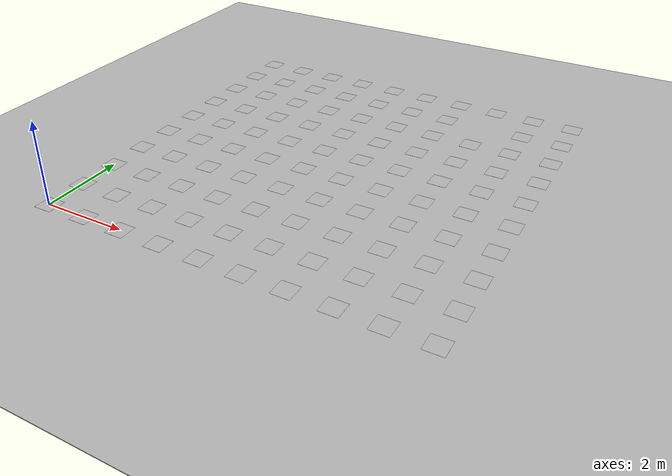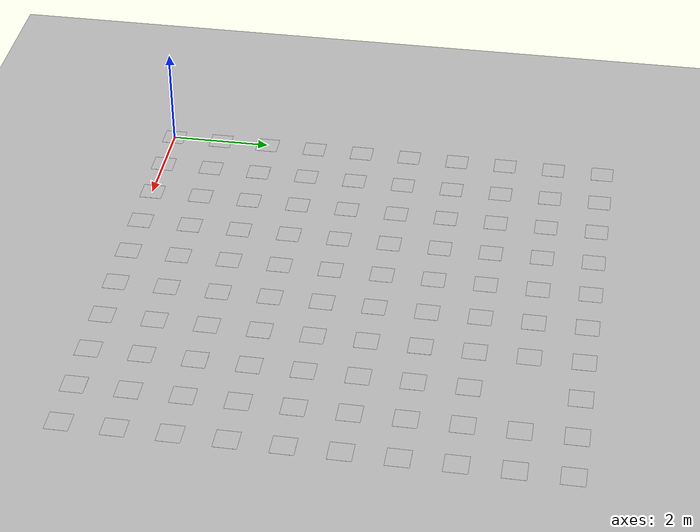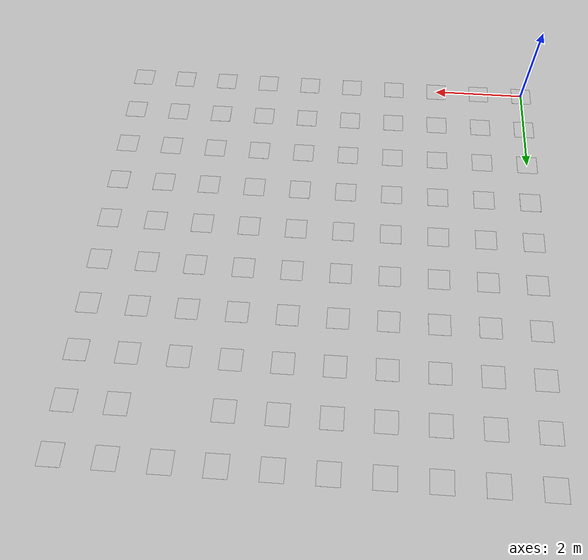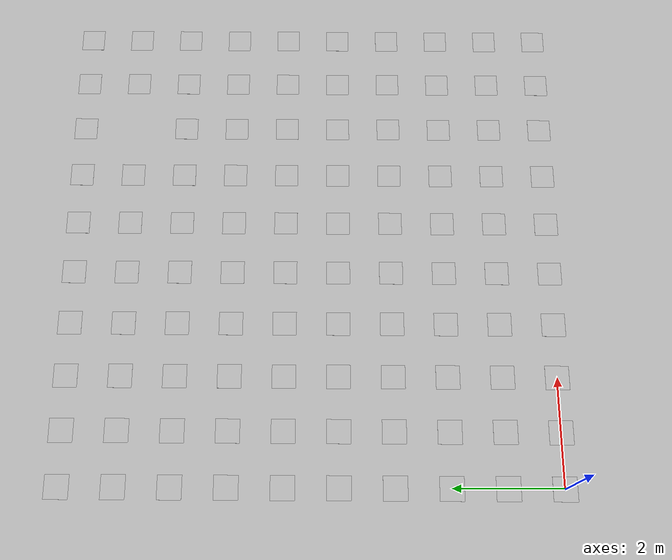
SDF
<?xml version="1.0" ?>
<sdf version="1.5">
  <world name="default">
    <!-- A global light source -->
    <include>
      <uri>model://sun</uri>
    </include>
    <include>
      <uri>model://parquet_plane</uri>
      <pose>0 0 -0.01 0 0 0</pose>
    </include>

    <include>
      <uri>model://aruco_cmit_txt</uri>
    </include>

    <scene>
      <ambient>0.1 0.1 0.1 1</ambient>
      <background>0.1 0.1 0.1 1</background>
      <shadows>false</shadows>
      <grid>false</grid>
      <origin_visual>false</origin_visual>
    </scene>

    <physics name='default_physics' default='0' type='ode'>
      <gravity>0 0 -9.8066</gravity>
      <ode>
        <solver>
          <type>quick</type>
          <iters>10</iters>
          <sor>1.3</sor>
          <use_dynamic_moi_rescaling>0</use_dynamic_moi_rescaling>
        </solver>
        <constraints>
          <cfm>0</cfm>
          <erp>0.2</erp>
          <contact_max_correcting_vel>100</contact_max_correcting_vel>
          <contact_surface_layer>0.001</contact_surface_layer>
        </constraints>
      </ode>
      <max_step_size>0.004</max_step_size>
      <real_time_factor>1</real_time_factor>
      <real_time_update_rate>250</real_time_update_rate>
      <magnetic_field>6.0e-6 2.3e-5 -4.2e-5</magnetic_field>
    </physics>
  </world>
</sdf>

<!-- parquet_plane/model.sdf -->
<sdf version="1.5">
  <model name="parquet_plane">
    <static>true</static>
    <link name="link">
      <collision name="collision">
        <geometry>
          <box>
            <size>200 200 .02</size>
          </box>
        </geometry>
      </collision>
      <visual name="visual">
        <cast_shadows>false</cast_shadows>
        <geometry>
          <box>
            <size>200 200 .02</size>
          </box>
        </geometry>
        <material>
          <script>
            <uri>model://parquet_plane/materials/scripts</uri>
            <uri>model://parquet_plane/materials/textures</uri>
            <name>parquet</name>
          </script>
        </material>
      </visual>
    </link>
  </model>
</sdf>

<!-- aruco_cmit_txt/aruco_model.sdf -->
<sdf version="1.5">
    <model name="aruco_2_99">
        <static>true</static>
        <link name="aruco_2_99_link">

<visual name="visual_marker_2_0">
    <pose>0.0 9.0 0.0 0.0 0.0 1.57079632679</pose>
    <cast_shadows>false</cast_shadows>
    <geometry>
        <box>
            <size>0.44 0.44 1e-3</size>
        </box>
    </geometry>
    <material>
        <script>
            <uri>model://aruco_cmit_txt/materials/scripts</uri>
            <uri>model://aruco_cmit_txt/materials/textures</uri>
            <name>aruco/marker_2_0</name>
        </script>
    </material>
</visual>

<visual name="visual_marker_2_1">
    <pose>1.0 9.0 0.0 0.0 0.0 1.57079632679</pose>
    <cast_shadows>false</cast_shadows>
    <geometry>
        <box>
            <size>0.44 0.44 1e-3</size>
        </box>
    </geometry>
    <material>
        <script>
            <uri>model://aruco_cmit_txt/materials/scripts</uri>
            <uri>model://aruco_cmit_txt/materials/textures</uri>
            <name>aruco/marker_2_1</name>
        </script>
    </material>
</visual>

<visual name="visual_marker_2_2">
    <pose>2.0 9.0 0.0 0.0 0.0 1.57079632679</pose>
    <cast_shadows>false</cast_shadows>
    <geometry>
        <box>
            <size>0.44 0.44 1e-3</size>
        </box>
    </geometry>
    <material>
        <script>
            <uri>model://aruco_cmit_txt/materials/scripts</uri>
            <uri>model://aruco_cmit_txt/materials/textures</uri>
            <name>aruco/marker_2_2</name>
        </script>
    </material>
</visual>

<visual name="visual_marker_2_3">
    <pose>3.0 9.0 0.0 0.0 0.0 1.57079632679</pose>
    <cast_shadows>false</cast_shadows>
    <geometry>
        <box>
            <size>0.44 0.44 1e-3</size>
        </box>
    </geometry>
    <material>
        <script>
            <uri>model://aruco_cmit_txt/materials/scripts</uri>
            <uri>model://aruco_cmit_txt/materials/textures</uri>
            <name>aruco/marker_2_3</name>
        </script>
    </material>
</visual>

<visual name="visual_marker_2_4">
    <pose>4.0 9.0 0.0 0.0 0.0 1.57079632679</pose>
    <cast_shadows>false</cast_shadows>
    <geometry>
        <box>
            <size>0.44 0.44 1e-3</size>
        </box>
    </geometry>
    <material>
        <script>
            <uri>model://aruco_cmit_txt/materials/scripts</uri>
            <uri>model://aruco_cmit_txt/materials/textures</uri>
            <name>aruco/marker_2_4</name>
        </script>
    </material>
</visual>

<visual name="visual_marker_2_5">
    <pose>5.0 9.0 0.0 0.0 0.0 1.57079632679</pose>
    <cast_shadows>false</cast_shadows>
    <geometry>
        <box>
            <size>0.44 0.44 1e-3</size>
        </box>
    </geometry>
    <material>
        <script>
            <uri>model://aruco_cmit_txt/materials/scripts</uri>
            <uri>model://aruco_cmit_txt/materials/textures</uri>
            <name>aruco/marker_2_5</name>
        </script>
    </material>
</visual>

<visual name="visual_marker_2_6">
    <pose>6.0 9.0 0.0 0.0 0.0 1.57079632679</pose>
    <cast_shadows>false</cast_shadows>
    <geometry>
        <box>
            <size>0.44 0.44 1e-3</size>
        </box>
    </geometry>
    <material>
        <script>
            <uri>model://aruco_cmit_txt/materials/scripts</uri>
            <uri>model://aruco_cmit_txt/materials/textures</uri>
            <name>aruco/marker_2_6</name>
        </script>
    </material>
</visual>

<visual name="visual_marker_2_7">
    <pose>7.0 9.0 0.0 0.0 0.0 1.57079632679</pose>
    <cast_shadows>false</cast_shadows>
    <geometry>
        <box>
            <size>0.44 0.44 1e-3</size>
        </box>
    </geometry>
    <material>
        <script>
            <uri>model://aruco_cmit_txt/materials/scripts</uri>
            <uri>model://aruco_cmit_txt/materials/textures</uri>
            <name>aruco/marker_2_7</name>
        </script>
    </material>
</visual>

<visual name="visual_marker_2_8">
    <pose>8.0 9.0 0.0 0.0 0.0 1.57079632679</pose>
    <cast_shadows>false</cast_shadows>
    <geometry>
        <box>
            <size>0.44 0.44 1e-3</size>
        </box>
    </geometry>
    <material>
        <script>
            <uri>model://aruco_cmit_txt/materials/scripts</uri>
            <uri>model://aruco_cmit_txt/materials/textures</uri>
            <name>aruco/marker_2_8</name>
        </script>
    </material>
</visual>

<visual name="visual_marker_2_9">
    <pose>9.0 9.0 0.0 0.0 0.0 1.57079632679</pose>
    <cast_shadows>false</cast_shadows>
    <geometry>
        <box>
            <size>0.44 0.44 1e-3</size>
        </box>
    </geometry>
    <material>
        <script>
            <uri>model://aruco_cmit_txt/materials/scripts</uri>
            <uri>model://aruco_cmit_txt/materials/textures</uri>
            <name>aruco/marker_2_9</name>
        </script>
    </material>
</visual>

<visual name="visual_marker_2_10">
    <pose>0.0 8.0 0.0 0.0 0.0 1.57079632679</pose>
    <cast_shadows>false</cast_shadows>
    <geometry>
        <box>
            <size>0.44 0.44 1e-3</size>
        </box>
    </geometry>
    <material>
        <script>
            <uri>model://aruco_cmit_txt/materials/scripts</uri>
            <uri>model://aruco_cmit_txt/materials/textures</uri>
            <name>aruco/marker_2_10</name>
        </script>
    </material>
</visual>

<visual name="visual_marker_2_11">
    <pose>1.0 8.0 0.0 0.0 0.0 1.57079632679</pose>
    <cast_shadows>false</cast_shadows>
    <geometry>
        <box>
            <size>0.44 0.44 1e-3</size>
        </box>
    </geometry>
    <material>
        <script>
            <uri>model://aruco_cmit_txt/materials/scripts</uri>
            <uri>model://aruco_cmit_txt/materials/textures</uri>
            <name>aruco/marker_2_11</name>
        </script>
    </material>
</visual>

<visual name="visual_marker_2_12">
    <pose>2.0 8.0 0.0 0.0 0.0 1.57079632679</pose>
    <cast_shadows>false</cast_shadows>
    <geometry>
        <box>
            <size>0.44 0.44 1e-3</size>
        </box>
    </geometry>
    <material>
        <script>
            <uri>model://aruco_cmit_txt/materials/scripts</uri>
            <uri>model://aruco_cmit_txt/materials/textures</uri>
            <name>aruco/marker_2_12</name>
        </script>
    </material>
</visual>

<visual name="visual_marker_2_13">
    <pose>3.0 8.0 0.0 0.0 0.0 1.57079632679</pose>
    <cast_shadows>false</cast_shadows>
    <geometry>
        <box>
            <size>0.44 0.44 1e-3</size>
        </box>
    </geometry>
    <material>
        <script>
            <uri>model://aruco_cmit_txt/materials/scripts</uri>
            <uri>model://aruco_cmit_txt/materials/textures</uri>
            <name>aruco/marker_2_13</name>
        </script>
    </material>
</visual>

<visual name="visual_marker_2_14">
    <pose>4.0 8.0 0.0 0.0 0.0 1.57079632679</pose>
    <cast_shadows>false</cast_shadows>
    <geometry>
        <box>
            <size>0.44 0.44 1e-3</size>
        </box>
    </geometry>
    <material>
        <script>
            <uri>model://aruco_cmit_txt/materials/scripts</uri>
            <uri>model://aruco_cmit_txt/materials/textures</uri>
            <name>aruco/marker_2_14</name>
        </script>
    </material>
</visual>

<visual name="visual_marker_2_15">
    <pose>5.0 8.0 0.0 0.0 0.0 1.57079632679</pose>
    <cast_shadows>false</cast_shadows>
    <geometry>
        <box>
            <size>0.44 0.44 1e-3</size>
        </box>
    </geometry>
    <material>
        <script>
            <uri>model://aruco_cmit_txt/materials/scripts</uri>
            <uri>model://aruco_cmit_txt/materials/textures</uri>
            <name>aruco/marker_2_15</name>
        </script>
    </material>
</visual>

<visual name="visual_marker_2_16">
    <pose>6.0 8.0 0.0 0.0 0.0 1.57079632679</pose>
    <cast_shadows>false</cast_shadows>
    <geometry>
        <box>
            <size>0.44 0.44 1e-3</size>
        </box>
    </geometry>
    <material>
        <script>
            <uri>model://aruco_cmit_txt/materials/scripts</uri>
            <uri>model://aruco_cmit_txt/materials/textures</uri>
            <name>aruco/marker_2_16</name>
        </script>
    </material>
</visual>

<visual name="visual_marker_2_18">
    <pose>8.0 8.0 0.0 0.0 0.0 1.57079632679</pose>
    <cast_shadows>false</cast_shadows>
    <geometry>
        <box>
            <size>0.44 0.44 1e-3</size>
        </box>
    </geometry>
    <material>
        <script>
            <uri>model://aruco_cmit_txt/materials/scripts</uri>
            <uri>model://aruco_cmit_txt/materials/textures</uri>
            <name>aruco/marker_2_18</name>
        </script>
    </material>
</visual>

<visual name="visual_marker_2_19">
    <pose>9.0 8.0 0.0 0.0 0.0 1.57079632679</pose>
    <cast_shadows>false</cast_shadows>
    <geometry>
        <box>
            <size>0.44 0.44 1e-3</size>
        </box>
    </geometry>
    <material>
        <script>
            <uri>model://aruco_cmit_txt/materials/scripts</uri>
            <uri>model://aruco_cmit_txt/materials/textures</uri>
            <name>aruco/marker_2_19</name>
        </script>
    </material>
</visual>

<visual name="visual_marker_2_20">
    <pose>0.0 7.0 0.0 0.0 0.0 1.57079632679</pose>
    <cast_shadows>false</cast_shadows>
    <geometry>
        <box>
            <size>0.44 0.44 1e-3</size>
        </box>
    </geometry>
    <material>
        <script>
            <uri>model://aruco_cmit_txt/materials/scripts</uri>
            <uri>model://aruco_cmit_txt/materials/textures</uri>
            <name>aruco/marker_2_20</name>
        </script>
    </material>
</visual>

<visual name="visual_marker_2_21">
    <pose>1.0 7.0 0.0 0.0 0.0 1.57079632679</pose>
    <cast_shadows>false</cast_shadows>
    <geometry>
        <box>
            <size>0.44 0.44 1e-3</size>
        </box>
    </geometry>
    <material>
        <script>
            <uri>model://aruco_cmit_txt/materials/scripts</uri>
            <uri>model://aruco_cmit_txt/materials/textures</uri>
            <name>aruco/marker_2_21</name>
        </script>
    </material>
</visual>

<visual name="visual_marker_2_22">
    <pose>2.0 7.0 0.0 0.0 0.0 1.57079632679</pose>
    <cast_shadows>false</cast_shadows>
    <geometry>
        <box>
            <size>0.44 0.44 1e-3</size>
        </box>
    </geometry>
    <material>
        <script>
            <uri>model://aruco_cmit_txt/materials/scripts</uri>
            <uri>model://aruco_cmit_txt/materials/textures</uri>
            <name>aruco/marker_2_22</name>
        </script>
    </material>
</visual>

<visual name="visual_marker_2_23">
    <pose>3.0 7.0 0.0 0.0 0.0 1.57079632679</pose>
    <cast_shadows>false</cast_shadows>
    <geometry>
        <box>
            <size>0.44 0.44 1e-3</size>
        </box>
    </geometry>
    <material>
        <script>
            <uri>model://aruco_cmit_txt/materials/scripts</uri>
            <uri>model://aruco_cmit_txt/materials/textures</uri>
            <name>aruco/marker_2_23</name>
        </script>
    </material>
</visual>

<visual name="visual_marker_2_24">
    <pose>4.0 7.0 0.0 0.0 0.0 1.57079632679</pose>
    <cast_shadows>false</cast_shadows>
    <geometry>
        <box>
            <size>0.44 0.44 1e-3</size>
        </box>
    </geometry>
    <material>
        <script>
            <uri>model://aruco_cmit_txt/materials/scripts</uri>
            <uri>model://aruco_cmit_txt/materials/textures</uri>
            <name>aruco/marker_2_24</name>
        </script>
    </material>
</visual>

<visual name="visual_marker_2_25">
    <pose>5.0 7.0 0.0 0.0 0.0 1.57079632679</pose>
    <cast_shadows>false</cast_shadows>
    <geometry>
        <box>
            <size>0.44 0.44 1e-3</size>
        </box>
    </geometry>
    <material>
        <script>
            <uri>model://aruco_cmit_txt/materials/scripts</uri>
            <uri>model://aruco_cmit_txt/materials/textures</uri>
            <name>aruco/marker_2_25</name>
        </script>
    </material>
</visual>

<visual name="visual_marker_2_26">
    <pose>6.0 7.0 0.0 0.0 0.0 1.57079632679</pose>
    <cast_shadows>false</cast_shadows>
    <geometry>
        <box>
            <size>0.44 0.44 1e-3</size>
        </box>
    </geometry>
    <material>
        <script>
            <uri>model://aruco_cmit_txt/materials/scripts</uri>
            <uri>model://aruco_cmit_txt/materials/textures</uri>
            <name>aruco/marker_2_26</name>
        </script>
    </material>
</visual>

<visual name="visual_marker_2_27">
    <pose>7.0 7.0 0.0 0.0 0.0 1.57079632679</pose>
    <cast_shadows>false</cast_shadows>
    <geometry>
        <box>
            <size>0.44 0.44 1e-3</size>
        </box>
    </geometry>
    <material>
        <script>
            <uri>model://aruco_cmit_txt/materials/scripts</uri>
            <uri>model://aruco_cmit_txt/materials/textures</uri>
            <name>aruco/marker_2_27</name>
        </script>
    </material>
</visual>

<visual name="visual_marker_2_28">
    <pose>8.0 7.0 0.0 0.0 0.0 1.57079632679</pose>
    <cast_shadows>false</cast_shadows>
    <geometry>
        <box>
            <size>0.44 0.44 1e-3</size>
        </box>
    </geometry>
    <material>
        <script>
            <uri>model://aruco_cmit_txt/materials/scripts</uri>
            <uri>model://aruco_cmit_txt/materials/textures</uri>
            <name>aruco/marker_2_28</name>
        </script>
    </material>
</visual>

<visual name="visual_marker_2_29">
    <pose>9.0 7.0 0.0 0.0 0.0 1.57079632679</pose>
    <cast_shadows>false</cast_shadows>
    <geometry>
        <box>
            <size>0.44 0.44 1e-3</size>
        </box>
    </geometry>
    <material>
        <script>
            <uri>model://aruco_cmit_txt/materials/scripts</uri>
            <uri>model://aruco_cmit_txt/materials/textures</uri>
            <name>aruco/marker_2_29</name>
        </script>
    </material>
</visual>

<visual name="visual_marker_2_30">
    <pose>0.0 6.0 0.0 0.0 0.0 1.57079632679</pose>
    <cast_shadows>false</cast_shadows>
    <geometry>
        <box>
            <size>0.44 0.44 1e-3</size>
        </box>
    </geometry>
    <material>
        <script>
            <uri>model://aruco_cmit_txt/materials/scripts</uri>
            <uri>model://aruco_cmit_txt/materials/textures</uri>
            <name>aruco/marker_2_30</name>
        </script>
    </material>
</visual>

<visual name="visual_marker_2_31">
    <pose>1.0 6.0 0.0 0.0 0.0 1.57079632679</pose>
    <cast_shadows>false</cast_shadows>
    <geometry>
        <box>
            <size>0.44 0.44 1e-3</size>
        </box>
    </geometry>
    <material>
        <script>
            <uri>model://aruco_cmit_txt/materials/scripts</uri>
            <uri>model://aruco_cmit_txt/materials/textures</uri>
            <name>aruco/marker_2_31</name>
        </script>
    </material>
</visual>

<visual name="visual_marker_2_32">
    <pose>2.0 6.0 0.0 0.0 0.0 1.57079632679</pose>
    <cast_shadows>false</cast_shadows>
    <geometry>
        <box>
            <size>0.44 0.44 1e-3</size>
        </box>
    </geometry>
    <material>
        <script>
            <uri>model://aruco_cmit_txt/materials/scripts</uri>
            <uri>model://aruco_cmit_txt/materials/textures</uri>
            <name>aruco/marker_2_32</name>
        </script>
    </material>
</visual>

<visual name="visual_marker_2_33">
    <pose>3.0 6.0 0.0 0.0 0.0 1.57079632679</pose>
    <cast_shadows>false</cast_shadows>
    <geometry>
        <box>
            <size>0.44 0.44 1e-3</size>
        </box>
    </geometry>
    <material>
        <script>
            <uri>model://aruco_cmit_txt/materials/scripts</uri>
            <uri>model://aruco_cmit_txt/materials/textures</uri>
            <name>aruco/marker_2_33</name>
        </script>
    </material>
</visual>

<visual name="visual_marker_2_34">
    <pose>4.0 6.0 0.0 0.0 0.0 1.57079632679</pose>
    <cast_shadows>false</cast_shadows>
    <geometry>
        <box>
            <size>0.44 0.44 1e-3</size>
        </box>
    </geometry>
    <material>
        <script>
            <uri>model://aruco_cmit_txt/materials/scripts</uri>
            <uri>model://aruco_cmit_txt/materials/textures</uri>
            <name>aruco/marker_2_34</name>
        </script>
    </material>
</visual>

<visual name="visual_marker_2_35">
    <pose>5.0 6.0 0.0 0.0 0.0 1.57079632679</pose>
    <cast_shadows>false</cast_shadows>
    <geometry>
        <box>
            <size>0.44 0.44 1e-3</size>
        </box>
    </geometry>
    <material>
        <script>
            <uri>model://aruco_cmit_txt/materials/scripts</uri>
            <uri>model://aruco_cmit_txt/materials/textures</uri>
            <name>aruco/marker_2_35</name>
        </script>
    </material>
</visual>

<visual name="visual_marker_2_36">
    <pose>6.0 6.0 0.0 0.0 0.0 1.57079632679</pose>
    <cast_shadows>false</cast_shadows>
    <geometry>
        <box>
            <size>0.44 0.44 1e-3</size>
        </box>
    </geometry>
    <material>
        <script>
            <uri>model://aruco_cmit_txt/materials/scripts</uri>
            <uri>model://aruco_cmit_txt/materials/textures</uri>
            <name>aruco/marker_2_36</name>
        </script>
    </material>
</visual>

<visual name="visual_marker_2_37">
    <pose>7.0 6.0 0.0 0.0 0.0 1.57079632679</pose>
    <cast_shadows>false</cast_shadows>
    <geometry>
        <box>
            <size>0.44 0.44 1e-3</size>
        </box>
    </geometry>
    <material>
        <script>
            <uri>model://aruco_cmit_txt/materials/scripts</uri>
            <uri>model://aruco_cmit_txt/materials/textures</uri>
            <name>aruco/marker_2_37</name>
        </script>
    </material>
</visual>

<visual name="visual_marker_2_38">
    <pose>8.0 6.0 0.0 0.0 0.0 1.57079632679</pose>
    <cast_shadows>false</cast_shadows>
    <geometry>
        <box>
            <size>0.44 0.44 1e-3</size>
        </box>
    </geometry>
    <material>
        <script>
            <uri>model://aruco_cmit_txt/materials/scripts</uri>
            <uri>model://aruco_cmit_txt/materials/textures</uri>
            <name>aruco/marker_2_38</name>
        </script>
    </material>
</visual>

<visual name="visual_marker_2_39">
    <pose>9.0 6.0 0.0 0.0 0.0 1.57079632679</pose>
    <cast_shadows>false</cast_shadows>
    <geometry>
        <box>
            <size>0.44 0.44 1e-3</size>
        </box>
    </geometry>
    <material>
        <script>
            <uri>model://aruco_cmit_txt/materials/scripts</uri>
            <uri>model://aruco_cmit_txt/materials/textures</uri>
            <name>aruco/marker_2_39</name>
        </script>
    </material>
</visual>

<visual name="visual_marker_2_40">
    <pose>0.0 5.0 0.0 0.0 0.0 1.57079632679</pose>
    <cast_shadows>false</cast_shadows>
    <geometry>
        <box>
            <size>0.44 0.44 1e-3</size>
        </box>
    </geometry>
    <material>
        <script>
            <uri>model://aruco_cmit_txt/materials/scripts</uri>
            <uri>model://aruco_cmit_txt/materials/textures</uri>
            <name>aruco/marker_2_40</name>
        </script>
    </material>
</visual>

<visual name="visual_marker_2_41">
    <pose>1.0 5.0 0.0 0.0 0.0 1.57079632679</pose>
    <cast_shadows>false</cast_shadows>
    <geometry>
        <box>
            <size>0.44 0.44 1e-3</size>
        </box>
    </geometry>
    <material>
        <script>
            <uri>model://aruco_cmit_txt/materials/scripts</uri>
            <uri>model://aruco_cmit_txt/materials/textures</uri>
            <name>aruco/marker_2_41</name>
        </script>
    </material>
</visual>

<visual name="visual_marker_2_42">
    <pose>2.0 5.0 0.0 0.0 0.0 1.57079632679</pose>
    <cast_shadows>false</cast_shadows>
    <geometry>
        <box>
            <size>0.44 0.44 1e-3</size>
        </box>
    </geometry>
    <material>
        <script>
            <uri>model://aruco_cmit_txt/materials/scripts</uri>
            <uri>model://aruco_cmit_txt/materials/textures</uri>
            <name>aruco/marker_2_42</name>
        </script>
    </material>
</visual>

<visual name="visual_marker_2_43">
    <pose>3.0 5.0 0.0 0.0 0.0 1.57079632679</pose>
    <cast_shadows>false</cast_shadows>
    <geometry>
        <box>
            <size>0.44 0.44 1e-3</size>
        </box>
    </geometry>
    <material>
        <script>
            <uri>model://aruco_cmit_txt/materials/scripts</uri>
            <uri>model://aruco_cmit_txt/materials/textures</uri>
            <name>aruco/marker_2_43</name>
        </script>
    </material>
</visual>

<visual name="visual_marker_2_44">
    <pose>4.0 5.0 0.0 0.0 0.0 1.57079632679</pose>
    <cast_shadows>false</cast_shadows>
    <geometry>
        <box>
            <size>0.44 0.44 1e-3</size>
        </box>
    </geometry>
    <material>
        <script>
            <uri>model://aruco_cmit_txt/materials/scripts</uri>
            <uri>model://aruco_cmit_txt/materials/textures</uri>
            <name>aruco/marker_2_44</name>
        </script>
    </material>
</visual>

<visual name="visual_marker_2_45">
    <pose>5.0 5.0 0.0 0.0 0.0 1.57079632679</pose>
    <cast_shadows>false</cast_shadows>
    <geometry>
        <box>
            <size>0.44 0.44 1e-3</size>
        </box>
    </geometry>
    <material>
        <script>
            <uri>model://aruco_cmit_txt/materials/scripts</uri>
            <uri>model://aruco_cmit_txt/materials/textures</uri>
            <name>aruco/marker_2_45</name>
        </script>
    </material>
</visual>

<visual name="visual_marker_2_46">
    <pose>6.0 5.0 0.0 0.0 0.0 1.57079632679</pose>
    <cast_shadows>false</cast_shadows>
    <geometry>
        <box>
            <size>0.44 0.44 1e-3</size>
        </box>
    </geometry>
    <material>
        <script>
            <uri>model://aruco_cmit_txt/materials/scripts</uri>
            <uri>model://aruco_cmit_txt/materials/textures</uri>
            <name>aruco/marker_2_46</name>
        </script>
    </material>
</visual>

<visual name="visual_marker_2_47">
    <pose>7.0 5.0 0.0 0.0 0.0 1.57079632679</pose>
    <cast_shadows>false</cast_shadows>
    <geometry>
        <box>
            <size>0.44 0.44 1e-3</size>
        </box>
    </geometry>
    <material>
        <script>
            <uri>model://aruco_cmit_txt/materials/scripts</uri>
            <uri>model://aruco_cmit_txt/materials/textures</uri>
            <name>aruco/marker_2_47</name>
        </script>
    </material>
</visual>

<visual name="visual_marker_2_48">
    <pose>8.0 5.0 0.0 0.0 0.0 1.57079632679</pose>
    <cast_shadows>false</cast_shadows>
    <geometry>
        <box>
            <size>0.44 0.44 1e-3</size>
        </box>
    </geometry>
    <material>
        <script>
            <uri>model://aruco_cmit_txt/materials/scripts</uri>
            <uri>model://aruco_cmit_txt/materials/textures</uri>
            <name>aruco/marker_2_48</name>
        </script>
    </material>
</visual>

<visual name="visual_marker_2_49">
    <pose>9.0 5.0 0.0 0.0 0.0 1.57079632679</pose>
    <cast_shadows>false</cast_shadows>
    <geometry>
        <box>
            <size>0.44 0.44 1e-3</size>
        </box>
    </geometry>
    <material>
        <script>
            <uri>model://aruco_cmit_txt/materials/scripts</uri>
            <uri>model://aruco_cmit_txt/materials/textures</uri>
            <name>aruco/marker_2_49</name>
        </script>
    </material>
</visual>

<visual name="visual_marker_2_50">
    <pose>0.0 4.0 0.0 0.0 0.0 1.57079632679</pose>
    <cast_shadows>false</cast_shadows>
    <geometry>
        <box>
            <size>0.44 0.44 1e-3</size>
        </box>
    </geometry>
    <material>
        <script>
            <uri>model://aruco_cmit_txt/materials/scripts</uri>
            <uri>model://aruco_cmit_txt/materials/textures</uri>
            <name>aruco/marker_2_50</name>
        </script>
    </material>
</visual>

<visual name="visual_marker_2_51">
    <pose>1.0 4.0 0.0 0.0 0.0 1.57079632679</pose>
    <cast_shadows>false</cast_shadows>
    <geometry>
        <box>
            <size>0.44 0.44 1e-3</size>
        </box>
    </geometry>
    <material>
        <script>
            <uri>model://aruco_cmit_txt/materials/scripts</uri>
            <uri>model://aruco_cmit_txt/materials/textures</uri>
            <name>aruco/marker_2_51</name>
        </script>
    </material>
</visual>

<visual name="visual_marker_2_52">
    <pose>2.0 4.0 0.0 0.0 0.0 1.57079632679</pose>
    <cast_shadows>false</cast_shadows>
    <geometry>
        <box>
            <size>0.44 0.44 1e-3</size>
        </box>
    </geometry>
    <material>
        <script>
            <uri>model://aruco_cmit_txt/materials/scripts</uri>
            <uri>model://aruco_cmit_txt/materials/textures</uri>
            <name>aruco/marker_2_52</name>
        </script>
    </material>
</visual>

<visual name="visual_marker_2_53">
    <pose>3.0 4.0 0.0 0.0 0.0 1.57079632679</pose>
    <cast_shadows>false</cast_shadows>
    <geometry>
        <box>
            <size>0.44 0.44 1e-3</size>
        </box>
    </geometry>
    <material>
        <script>
            <uri>model://aruco_cmit_txt/materials/scripts</uri>
            <uri>model://aruco_cmit_txt/materials/textures</uri>
            <name>aruco/marker_2_53</name>
        </script>
    </material>
</visual>

<visual name="visual_marker_2_54">
    <pose>4.0 4.0 0.0 0.0 0.0 1.57079632679</pose>
    <cast_shadows>false</cast_shadows>
    <geometry>
        <box>
            <size>0.44 0.44 1e-3</size>
        </box>
    </geometry>
    <material>
        <script>
            <uri>model://aruco_cmit_txt/materials/scripts</uri>
            <uri>model://aruco_cmit_txt/materials/textures</uri>
            <name>aruco/marker_2_54</name>
        </script>
    </material>
</visual>

<visual name="visual_marker_2_55">
    <pose>5.0 4.0 0.0 0.0 0.0 1.57079632679</pose>
    <cast_shadows>false</cast_shadows>
    <geometry>
        <box>
            <size>0.44 0.44 1e-3</size>
        </box>
    </geometry>
    <material>
        <script>
            <uri>model://aruco_cmit_txt/materials/scripts</uri>
            <uri>model://aruco_cmit_txt/materials/textures</uri>
            <name>aruco/marker_2_55</name>
        </script>
    </material>
</visual>

<visual name="visual_marker_2_56">
    <pose>6.0 4.0 0.0 0.0 0.0 1.57079632679</pose>
    <cast_shadows>false</cast_shadows>
    <geometry>
        <box>
            <size>0.44 0.44 1e-3</size>
        </box>
    </geometry>
    <material>
        <script>
            <uri>model://aruco_cmit_txt/materials/scripts</uri>
            <uri>model://aruco_cmit_txt/materials/textures</uri>
            <name>aruco/marker_2_56</name>
        </script>
    </material>
</visual>

<visual name="visual_marker_2_57">
    <pose>7.0 4.0 0.0 0.0 0.0 1.57079632679</pose>
    <cast_shadows>false</cast_shadows>
    <geometry>
        <box>
            <size>0.44 0.44 1e-3</size>
        </box>
    </geometry>
    <material>
        <script>
            <uri>model://aruco_cmit_txt/materials/scripts</uri>
            <uri>model://aruco_cmit_txt/materials/textures</uri>
            <name>aruco/marker_2_57</name>
        </script>
    </material>
</visual>

<visual name="visual_marker_2_58">
    <pose>8.0 4.0 0.0 0.0 0.0 1.57079632679</pose>
    <cast_shadows>false</cast_shadows>
    <geometry>
        <box>
            <size>0.44 0.44 1e-3</size>
        </box>
    </geometry>
    <material>
        <script>
            <uri>model://aruco_cmit_txt/materials/scripts</uri>
            <uri>model://aruco_cmit_txt/materials/textures</uri>
            <name>aruco/marker_2_58</name>
        </script>
    </material>
</visual>

<visual name="visual_marker_2_59">
    <pose>9.0 4.0 0.0 0.0 0.0 1.57079632679</pose>
    <cast_shadows>false</cast_shadows>
    <geometry>
        <box>
            <size>0.44 0.44 1e-3</size>
        </box>
    </geometry>
    <material>
        <script>
            <uri>model://aruco_cmit_txt/materials/scripts</uri>
            <uri>model://aruco_cmit_txt/materials/textures</uri>
            <name>aruco/marker_2_59</name>
        </script>
    </material>
</visual>

<visual name="visual_marker_2_60">
    <pose>0.0 3.0 0.0 0.0 0.0 1.57079632679</pose>
    <cast_shadows>false</cast_shadows>
    <geometry>
        <box>
            <size>0.44 0.44 1e-3</size>
        </box>
    </geometry>
    <material>
        <script>
            <uri>model://aruco_cmit_txt/materials/scripts</uri>
            <uri>model://aruco_cmit_txt/materials/textures</uri>
            <name>aruco/marker_2_60</name>
        </script>
    </material>
</visual>

<visual name="visual_marker_2_61">
    <pose>1.0 3.0 0.0 0.0 0.0 1.57079632679</pose>
    <cast_shadows>false</cast_shadows>
    <geometry>
        <box>
            <size>0.44 0.44 1e-3</size>
        </box>
    </geometry>
    <material>
        <script>
            <uri>model://aruco_cmit_txt/materials/scripts</uri>
            <uri>model://aruco_cmit_txt/materials/textures</uri>
            <name>aruco/marker_2_61</name>
        </script>
    </material>
</visual>

<visual name="visual_marker_2_62">
    <pose>2.0 3.0 0.0 0.0 0.0 1.57079632679</pose>
    <cast_shadows>false</cast_shadows>
    <geometry>
        <box>
            <size>0.44 0.44 1e-3</size>
        </box>
    </geometry>
    <material>
        <script>
            <uri>model://aruco_cmit_txt/materials/scripts</uri>
            <uri>model://aruco_cmit_txt/materials/textures</uri>
            <name>aruco/marker_2_62</name>
        </script>
    </material>
</visual>

<visual name="visual_marker_2_63">
    <pose>3.0 3.0 0.0 0.0 0.0 1.57079632679</pose>
    <cast_shadows>false</cast_shadows>
    <geometry>
        <box>
            <size>0.44 0.44 1e-3</size>
        </box>
    </geometry>
    <material>
        <script>
            <uri>model://aruco_cmit_txt/materials/scripts</uri>
            <uri>model://aruco_cmit_txt/materials/textures</uri>
            <name>aruco/marker_2_63</name>
        </script>
    </material>
</visual>

<visual name="visual_marker_2_64">
    <pose>4.0 3.0 0.0 0.0 0.0 1.57079632679</pose>
    <cast_shadows>false</cast_shadows>
    <geometry>
        <box>
            <size>0.44 0.44 1e-3</size>
        </box>
    </geometry>
    <material>
        <script>
            <uri>model://aruco_cmit_txt/materials/scripts</uri>
            <uri>model://aruco_cmit_txt/materials/textures</uri>
            <name>aruco/marker_2_64</name>
        </script>
    </material>
</visual>

<visual name="visual_marker_2_65">
    <pose>5.0 3.0 0.0 0.0 0.0 1.57079632679</pose>
    <cast_shadows>false</cast_shadows>
    <geometry>
        <box>
            <size>0.44 0.44 1e-3</size>
        </box>
    </geometry>
    <material>
        <script>
            <uri>model://aruco_cmit_txt/materials/scripts</uri>
            <uri>model://aruco_cmit_txt/materials/textures</uri>
            <name>aruco/marker_2_65</name>
        </script>
    </material>
</visual>

<visual name="visual_marker_2_66">
    <pose>6.0 3.0 0.0 0.0 0.0 1.57079632679</pose>
    <cast_shadows>false</cast_shadows>
    <geometry>
        <box>
            <size>0.44 0.44 1e-3</size>
        </box>
    </geometry>
    <material>
        <script>
            <uri>model://aruco_cmit_txt/materials/scripts</uri>
            <uri>model://aruco_cmit_txt/materials/textures</uri>
            <name>aruco/marker_2_66</name>
        </script>
    </material>
</visual>

<visual name="visual_marker_2_67">
    <pose>7.0 3.0 0.0 0.0 0.0 1.57079632679</pose>
    <cast_shadows>false</cast_shadows>
    <geometry>
        <box>
            <size>0.44 0.44 1e-3</size>
        </box>
    </geometry>
    <material>
        <script>
            <uri>model://aruco_cmit_txt/materials/scripts</uri>
            <uri>model://aruco_cmit_txt/materials/textures</uri>
            <name>aruco/marker_2_67</name>
        </script>
    </material>
</visual>

<visual name="visual_marker_2_68">
    <pose>8.0 3.0 0.0 0.0 0.0 1.57079632679</pose>
    <cast_shadows>false</cast_shadows>
    <geometry>
        <box>
            <size>0.44 0.44 1e-3</size>
        </box>
    </geometry>
    <material>
        <script>
            <uri>model://aruco_cmit_txt/materials/scripts</uri>
            <uri>model://aruco_cmit_txt/materials/textures</uri>
            <name>aruco/marker_2_68</name>
        </script>
    </material>
</visual>

<visual name="visual_marker_2_69">
    <pose>9.0 3.0 0.0 0.0 0.0 1.57079632679</pose>
    <cast_shadows>false</cast_shadows>
    <geometry>
        <box>
            <size>0.44 0.44 1e-3</size>
        </box>
    </geometry>
    <material>
        <script>
            <uri>model://aruco_cmit_txt/materials/scripts</uri>
            <uri>model://aruco_cmit_txt/materials/textures</uri>
            <name>aruco/marker_2_69</name>
        </script>
    </material>
</visual>

<visual name="visual_marker_2_70">
    <pose>0.0 2.0 0.0 0.0 0.0 1.57079632679</pose>
    <cast_shadows>false</cast_shadows>
    <geometry>
        <box>
            <size>0.44 0.44 1e-3</size>
        </box>
    </geometry>
    <material>
        <script>
            <uri>model://aruco_cmit_txt/materials/scripts</uri>
            <uri>model://aruco_cmit_txt/materials/textures</uri>
            <name>aruco/marker_2_70</name>
        </script>
    </material>
</visual>

<visual name="visual_marker_2_71">
    <pose>1.0 2.0 0.0 0.0 0.0 1.57079632679</pose>
    <cast_shadows>false</cast_shadows>
    <geometry>
        <box>
            <size>0.44 0.44 1e-3</size>
        </box>
    </geometry>
    <material>
        <script>
            <uri>model://aruco_cmit_txt/materials/scripts</uri>
            <uri>model://aruco_cmit_txt/materials/textures</uri>
            <name>aruco/marker_2_71</name>
        </script>
    </material>
</visual>

<visual name="visual_marker_2_72">
    <pose>2.0 2.0 0.0 0.0 0.0 1.57079632679</pose>
    <cast_shadows>false</cast_shadows>
    <geometry>
        <box>
            <size>0.44 0.44 1e-3</size>
        </box>
    </geometry>
    <material>
        <script>
            <uri>model://aruco_cmit_txt/materials/scripts</uri>
            <uri>model://aruco_cmit_txt/materials/textures</uri>
            <name>aruco/marker_2_72</name>
        </script>
    </material>
</visual>

<visual name="visual_marker_2_73">
    <pose>3.0 2.0 0.0 0.0 0.0 1.57079632679</pose>
    <cast_shadows>false</cast_shadows>
    <geometry>
        <box>
            <size>0.44 0.44 1e-3</size>
        </box>
    </geometry>
    <material>
        <script>
            <uri>model://aruco_cmit_txt/materials/scripts</uri>
            <uri>model://aruco_cmit_txt/materials/textures</uri>
            <name>aruco/marker_2_73</name>
        </script>
    </material>
</visual>

<visual name="visual_marker_2_74">
    <pose>4.0 2.0 0.0 0.0 0.0 1.57079632679</pose>
    <cast_shadows>false</cast_shadows>
    <geometry>
        <box>
            <size>0.44 0.44 1e-3</size>
        </box>
    </geometry>
    <material>
        <script>
            <uri>model://aruco_cmit_txt/materials/scripts</uri>
            <uri>model://aruco_cmit_txt/materials/textures</uri>
            <name>aruco/marker_2_74</name>
        </script>
    </material>
</visual>

<visual name="visual_marker_2_75">
    <pose>5.0 2.0 0.0 0.0 0.0 1.57079632679</pose>
    <cast_shadows>false</cast_shadows>
    <geometry>
        <box>
            <size>0.44 0.44 1e-3</size>
        </box>
    </geometry>
    <material>
        <script>
            <uri>model://aruco_cmit_txt/materials/scripts</uri>
            <uri>model://aruco_cmit_txt/materials/textures</uri>
            <name>aruco/marker_2_75</name>
        </script>
    </material>
</visual>

<visual name="visual_marker_2_76">
    <pose>6.0 2.0 0.0 0.0 0.0 1.57079632679</pose>
    <cast_shadows>false</cast_shadows>
    <geometry>
        <box>
            <size>0.44 0.44 1e-3</size>
        </box>
    </geometry>
    <material>
        <script>
            <uri>model://aruco_cmit_txt/materials/scripts</uri>
            <uri>model://aruco_cmit_txt/materials/textures</uri>
            <name>aruco/marker_2_76</name>
        </script>
    </material>
</visual>

<visual name="visual_marker_2_77">
    <pose>7.0 2.0 0.0 0.0 0.0 1.57079632679</pose>
    <cast_shadows>false</cast_shadows>
    <geometry>
        <box>
            <size>0.44 0.44 1e-3</size>
        </box>
    </geometry>
    <material>
        <script>
            <uri>model://aruco_cmit_txt/materials/scripts</uri>
            <uri>model://aruco_cmit_txt/materials/textures</uri>
            <name>aruco/marker_2_77</name>
        </script>
    </material>
</visual>

<visual name="visual_marker_2_78">
    <pose>8.0 2.0 0.0 0.0 0.0 1.57079632679</pose>
    <cast_shadows>false</cast_shadows>
    <geometry>
        <box>
            <size>0.44 0.44 1e-3</size>
        </box>
    </geometry>
    <material>
        <script>
            <uri>model://aruco_cmit_txt/materials/scripts</uri>
            <uri>model://aruco_cmit_txt/materials/textures</uri>
            <name>aruco/marker_2_78</name>
        </script>
    </material>
</visual>

<visual name="visual_marker_2_79">
    <pose>9.0 2.0 0.0 0.0 0.0 1.57079632679</pose>
    <cast_shadows>false</cast_shadows>
    <geometry>
        <box>
            <size>0.44 0.44 1e-3</size>
        </box>
    </geometry>
    <material>
        <script>
            <uri>model://aruco_cmit_txt/materials/scripts</uri>
            <uri>model://aruco_cmit_txt/materials/textures</uri>
            <name>aruco/marker_2_79</name>
        </script>
    </material>
</visual>

<visual name="visual_marker_2_80">
    <pose>0.0 1.0 0.0 0.0 0.0 1.57079632679</pose>
    <cast_shadows>false</cast_shadows>
    <geometry>
        <box>
            <size>0.44 0.44 1e-3</size>
        </box>
    </geometry>
    <material>
        <script>
            <uri>model://aruco_cmit_txt/materials/scripts</uri>
            <uri>model://aruco_cmit_txt/materials/textures</uri>
            <name>aruco/marker_2_80</name>
        </script>
    </material>
</visual>

<visual name="visual_marker_2_81">
    <pose>1.0 1.0 0.0 0.0 0.0 1.57079632679</pose>
    <cast_shadows>false</cast_shadows>
    <geometry>
        <box>
            <size>0.44 0.44 1e-3</size>
        </box>
    </geometry>
    <material>
        <script>
            <uri>model://aruco_cmit_txt/materials/scripts</uri>
            <uri>model://aruco_cmit_txt/materials/textures</uri>
            <name>aruco/marker_2_81</name>
        </script>
    </material>
</visual>

<visual name="visual_marker_2_82">
    <pose>2.0 1.0 0.0 0.0 0.0 1.57079632679</pose>
    <cast_shadows>false</cast_shadows>
    <geometry>
        <box>
            <size>0.44 0.44 1e-3</size>
        </box>
    </geometry>
    <material>
        <script>
            <uri>model://aruco_cmit_txt/materials/scripts</uri>
            <uri>model://aruco_cmit_txt/materials/textures</uri>
            <name>aruco/marker_2_82</name>
        </script>
    </material>
</visual>

<visual name="visual_marker_2_83">
    <pose>3.0 1.0 0.0 0.0 0.0 1.57079632679</pose>
    <cast_shadows>false</cast_shadows>
    <geometry>
        <box>
            <size>0.44 0.44 1e-3</size>
        </box>
    </geometry>
    <material>
        <script>
            <uri>model://aruco_cmit_txt/materials/scripts</uri>
            <uri>model://aruco_cmit_txt/materials/textures</uri>
            <name>aruco/marker_2_83</name>
        </script>
    </material>
</visual>

<visual name="visual_marker_2_84">
    <pose>4.0 1.0 0.0 0.0 0.0 1.57079632679</pose>
    <cast_shadows>false</cast_shadows>
    <geometry>
        <box>
            <size>0.44 0.44 1e-3</size>
        </box>
    </geometry>
    <material>
        <script>
            <uri>model://aruco_cmit_txt/materials/scripts</uri>
            <uri>model://aruco_cmit_txt/materials/textures</uri>
            <name>aruco/marker_2_84</name>
        </script>
    </material>
</visual>

<visual name="visual_marker_2_85">
    <pose>5.0 1.0 0.0 0.0 0.0 1.57079632679</pose>
    <cast_shadows>false</cast_shadows>
    <geometry>
        <box>
            <size>0.44 0.44 1e-3</size>
        </box>
    </geometry>
    <material>
        <script>
            <uri>model://aruco_cmit_txt/materials/scripts</uri>
            <uri>model://aruco_cmit_txt/materials/textures</uri>
            <name>aruco/marker_2_85</name>
        </script>
    </material>
</visual>

<visual name="visual_marker_2_86">
    <pose>6.0 1.0 0.0 0.0 0.0 1.57079632679</pose>
    <cast_shadows>false</cast_shadows>
    <geometry>
        <box>
            <size>0.44 0.44 1e-3</size>
        </box>
    </geometry>
    <material>
        <script>
            <uri>model://aruco_cmit_txt/materials/scripts</uri>
            <uri>model://aruco_cmit_txt/materials/textures</uri>
            <name>aruco/marker_2_86</name>
        </script>
    </material>
</visual>

<visual name="visual_marker_2_87">
    <pose>7.0 1.0 0.0 0.0 0.0 1.57079632679</pose>
    <cast_shadows>false</cast_shadows>
    <geometry>
        <box>
            <size>0.44 0.44 1e-3</size>
        </box>
    </geometry>
    <material>
        <script>
            <uri>model://aruco_cmit_txt/materials/scripts</uri>
            <uri>model://aruco_cmit_txt/materials/textures</uri>
            <name>aruco/marker_2_87</name>
        </script>
    </material>
</visual>

<visual name="visual_marker_2_88">
    <pose>8.0 1.0 0.0 0.0 0.0 1.57079632679</pose>
    <cast_shadows>false</cast_shadows>
    <geometry>
        <box>
            <size>0.44 0.44 1e-3</size>
        </box>
    </geometry>
    <material>
        <script>
            <uri>model://aruco_cmit_txt/materials/scripts</uri>
            <uri>model://aruco_cmit_txt/materials/textures</uri>
            <name>aruco/marker_2_88</name>
        </script>
    </material>
</visual>

<visual name="visual_marker_2_89">
    <pose>9.0 1.0 0.0 0.0 0.0 1.57079632679</pose>
    <cast_shadows>false</cast_shadows>
    <geometry>
        <box>
            <size>0.44 0.44 1e-3</size>
        </box>
    </geometry>
    <material>
        <script>
            <uri>model://aruco_cmit_txt/materials/scripts</uri>
            <uri>model://aruco_cmit_txt/materials/textures</uri>
            <name>aruco/marker_2_89</name>
        </script>
    </material>
</visual>

<visual name="visual_marker_2_90">
    <pose>0.0 0.0 0.0 0.0 0.0 1.57079632679</pose>
    <cast_shadows>false</cast_shadows>
    <geometry>
        <box>
            <size>0.44 0.44 1e-3</size>
        </box>
    </geometry>
    <material>
        <script>
            <uri>model://aruco_cmit_txt/materials/scripts</uri>
            <uri>model://aruco_cmit_txt/materials/textures</uri>
            <name>aruco/marker_2_90</name>
        </script>
    </material>
</visual>

<visual name="visual_marker_2_91">
    <pose>1.0 0.0 0.0 0.0 0.0 1.57079632679</pose>
    <cast_shadows>false</cast_shadows>
    <geometry>
        <box>
            <size>0.44 0.44 1e-3</size>
        </box>
    </geometry>
    <material>
        <script>
            <uri>model://aruco_cmit_txt/materials/scripts</uri>
            <uri>model://aruco_cmit_txt/materials/textures</uri>
            <name>aruco/marker_2_91</name>
        </script>
    </material>
</visual>

<visual name="visual_marker_2_92">
    <pose>2.0 0.0 0.0 0.0 0.0 1.57079632679</pose>
    <cast_shadows>false</cast_shadows>
    <geometry>
        <box>
            <size>0.44 0.44 1e-3</size>
        </box>
    </geometry>
    <material>
        <script>
            <uri>model://aruco_cmit_txt/materials/scripts</uri>
            <uri>model://aruco_cmit_txt/materials/textures</uri>
            <name>aruco/marker_2_92</name>
        </script>
    </material>
</visual>

<visual name="visual_marker_2_93">
    <pose>3.0 0.0 0.0 0.0 0.0 1.57079632679</pose>
    <cast_shadows>false</cast_shadows>
    <geometry>
        <box>
            <size>0.44 0.44 1e-3</size>
        </box>
    </geometry>
    <material>
        <script>
            <uri>model://aruco_cmit_txt/materials/scripts</uri>
            <uri>model://aruco_cmit_txt/materials/textures</uri>
            <name>aruco/marker_2_93</name>
        </script>
    </material>
</visual>

<visual name="visual_marker_2_94">
    <pose>4.0 0.0 0.0 0.0 0.0 1.57079632679</pose>
    <cast_shadows>false</cast_shadows>
    <geometry>
        <box>
            <size>0.44 0.44 1e-3</size>
        </box>
    </geometry>
    <material>
        <script>
            <uri>model://aruco_cmit_txt/materials/scripts</uri>
            <uri>model://aruco_cmit_txt/materials/textures</uri>
            <name>aruco/marker_2_94</name>
        </script>
    </material>
</visual>

<visual name="visual_marker_2_95">
    <pose>5.0 0.0 0.0 0.0 0.0 1.57079632679</pose>
    <cast_shadows>false</cast_shadows>
    <geometry>
        <box>
            <size>0.44 0.44 1e-3</size>
        </box>
    </geometry>
    <material>
        <script>
            <uri>model://aruco_cmit_txt/materials/scripts</uri>
            <uri>model://aruco_cmit_txt/materials/textures</uri>
            <name>aruco/marker_2_95</name>
        </script>
    </material>
</visual>

<visual name="visual_marker_2_96">
    <pose>6.0 0.0 0.0 0.0 0.0 1.57079632679</pose>
    <cast_shadows>false</cast_shadows>
    <geometry>
        <box>
            <size>0.44 0.44 1e-3</size>
        </box>
    </geometry>
    <material>
        <script>
            <uri>model://aruco_cmit_txt/materials/scripts</uri>
            <uri>model://aruco_cmit_txt/materials/textures</uri>
            <name>aruco/marker_2_96</name>
        </script>
    </material>
</visual>

<visual name="visual_marker_2_97">
    <pose>7.0 0.0 0.0 0.0 0.0 1.57079632679</pose>
    <cast_shadows>false</cast_shadows>
    <geometry>
        <box>
            <size>0.44 0.44 1e-3</size>
        </box>
    </geometry>
    <material>
        <script>
            <uri>model://aruco_cmit_txt/materials/scripts</uri>
            <uri>model://aruco_cmit_txt/materials/textures</uri>
            <name>aruco/marker_2_97</name>
        </script>
    </material>
</visual>

<visual name="visual_marker_2_98">
    <pose>8.0 0.0 0.0 0.0 0.0 1.57079632679</pose>
    <cast_shadows>false</cast_shadows>
    <geometry>
        <box>
            <size>0.44 0.44 1e-3</size>
        </box>
    </geometry>
    <material>
        <script>
            <uri>model://aruco_cmit_txt/materials/scripts</uri>
            <uri>model://aruco_cmit_txt/materials/textures</uri>
            <name>aruco/marker_2_98</name>
        </script>
    </material>
</visual>

<visual name="visual_marker_2_99">
    <pose>9.0 0.0 0.0 0.0 0.0 1.57079632679</pose>
    <cast_shadows>false</cast_shadows>
    <geometry>
        <box>
            <size>0.44 0.44 1e-3</size>
        </box>
    </geometry>
    <material>
        <script>
            <uri>model://aruco_cmit_txt/materials/scripts</uri>
            <uri>model://aruco_cmit_txt/materials/textures</uri>
            <name>aruco/marker_2_99</name>
        </script>
    </material>
</visual>

        </link>
    </model>
</sdf>
